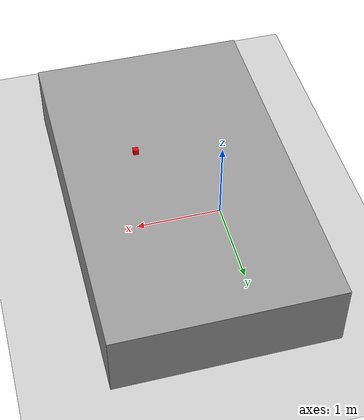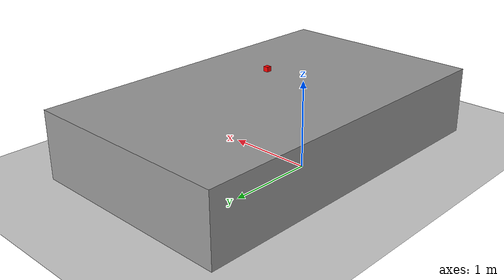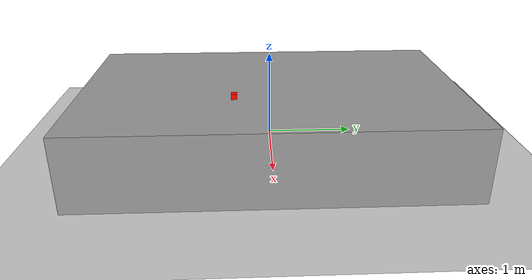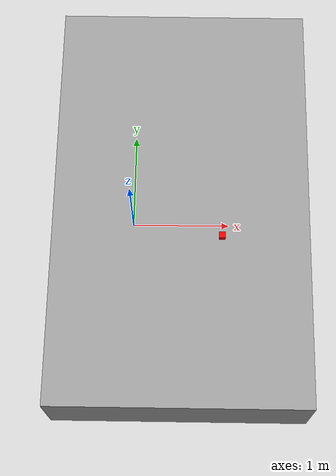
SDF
<?xml version="1.0" ?>
<sdf version="1.8">
  <world name="pick_and_place_world">
    <!-- Physics and Core Systems Plugins for Gazebo Harmonic -->
    <physics name="1ms" type="ignored">
      <max_step_size>0.001</max_step_size>
      <real_time_factor>1.0</real_time_factor>
    </physics>
    <plugin filename="gz-sim-physics-system" name="gz::sim::systems::Physics"/>
    <plugin filename="gz-sim-user-commands-system" name="gz::sim::systems::UserCommands"/>
    <plugin filename="gz-sim-scene-broadcaster-system" name="gz::sim::systems::SceneBroadcaster"/>
    <plugin filename="gz-sim-contact-system" name="gz::sim::systems::Contact"/>

    <!-- Lighting -->
    <light type="directional" name="sun">
      <cast_shadows>true</cast_shadows>
      <pose>0 0 10 0 0 0</pose>
      <diffuse>0.8 0.8 0.8 1</diffuse>
      <specular>0.2 0.2 0.2 1</specular>
      <direction>-0.5 0.1 -0.9</direction>
    </light>

    <!-- Ground Plane -->
    <model name="ground_plane">
      <static>true</static>
      <link name="link">
        <collision name="collision">
          <geometry><plane><normal>0 0 1</normal><size>100 100</size></plane></geometry>
        </collision>
        <visual name="visual">
          <geometry><plane><normal>0 0 1</normal><size>100 100</size></plane></geometry>
          <material>
            <ambient>0.8 0.8 0.8 1</ambient>
            <diffuse>0.8 0.8 0.8 1</diffuse>
          </material>
        </visual>
      </link>
    </model>

    <!-- Work Table Surface -->
    <model name="work_table">
      <static>true</static>
      <pose>0.5 0 0.4 0 0 0</pose>
      <link name="link">
        <collision name="collision">
          <geometry><box><size>2.5 4.1 0.8</size></box></geometry>
        </collision>
        <visual name="visual">
          <geometry><box><size>2.5 4.1 0.8</size></box></geometry>
          <material><ambient>0.4 0.4 0.4 1</ambient><diffuse>0.6 0.6 0.6 1</diffuse></material>
        </visual>
      </link>
    </model>

    <!-- Target Pick Object (e.g., Small Box) -->
    <model name="target_box">
      <pose>0.9 -0.4 0.83 0 0 0</pose>
      <link name="link">
        <inertial>
          <mass>0.08</mass>
          <inertia><ixx>0.0001</ixx><iyy>0.0001</iyy><izz>0.0001</izz></inertia>
        </inertial>
        <collision name="collision">
          <geometry><box><size>0.06 0.06 0.06</size></box></geometry>
          <surface>
            <friction>
              <ode><mu>1.2</mu><mu2>1.2</mu2></ode>
            </friction>
          </surface>
        </collision>
        <visual name="visual">
          <geometry><box><size>0.06 0.06 0.06</size></box></geometry>
          <material><ambient>1 0 0 1</ambient><diffuse>1 0 0 1</diffuse></material>
        </visual>
      </link>

      <plugin filename="gz-sim-pose-publisher-system" name="gz::sim::systems::PosePublisher">
        <publish_model_pose>true</publish_model_pose>
        <publish_link_pose>false</publish_link_pose>
        <publish_nested_models>false</publish_nested_models>
        <use_pose_vector_msg>false</use_pose_vector_msg>
        <update_frequency>30</update_frequency>
      </plugin>

  </model>

  </world>

</sdf>
